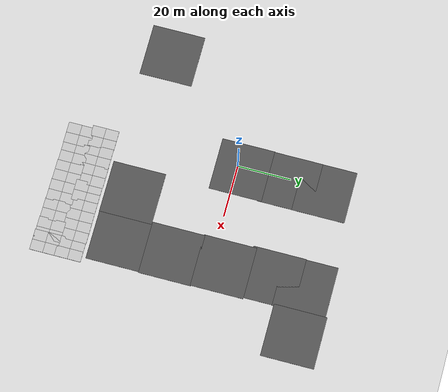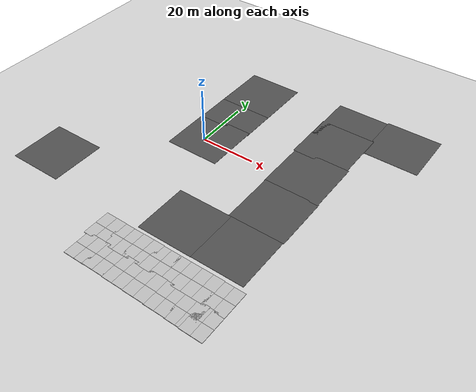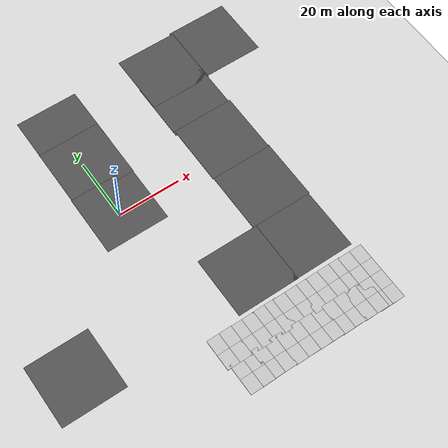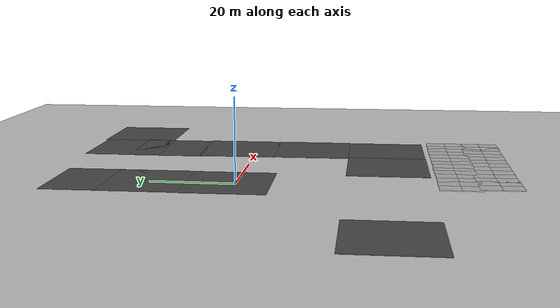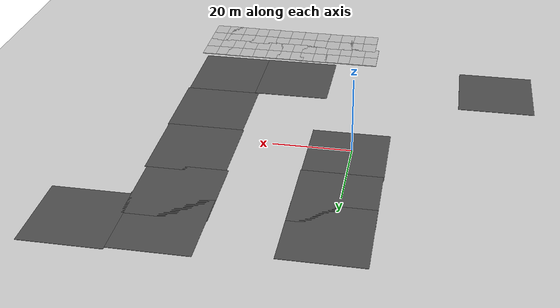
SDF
<sdf version="1.7">
 <world name="default">
  <model name="ground_plane">
   <static>1</static>
   <link name="link">
    <collision name="collision">
     <geometry><plane><normal>0 0 1</normal><size>100 100</size></plane></geometry>
     <surface><friction><ode><mu>100</mu><mu2>50</mu2></ode></friction></surface>
    </collision>
    <visual name="visual">
     <cast_shadows>0</cast_shadows>
     <geometry><plane><normal>0 0 1</normal><size>100 100</size></plane></geometry>
     <material>
      <script><uri>file://media/materials/scripts/gazebo.material</uri><name>Gazebo/Grey</name></script>
     </material>
    </visual>
   </link>
  </model>
  <model name="asphalt_plane">
   <static>1</static>
   <link name="link">
    <collision name="collision"><geometry><box><size>20 20 0.1</size></box></geometry></collision>
    <visual name="visual">
     <cast_shadows>0</cast_shadows>
     <geometry><box><size>20 20 0.1</size></box></geometry>
     <material>
      <script>
       <uri>model://asphalt_plane/materials/scripts</uri>
       <uri>model://asphalt_plane/materials/textures</uri>
       <name>vrc/asphalt</name>
      </script>
     </material>
    </visual>
   </link>
   <pose>-35.8594 -34.783 0 0 -0 0</pose>
  </model>
  <model name="asphalt_plane_1_clone_3">
   <static>1</static>
   <link name="link">
    <collision name="collision"><geometry><box><size>20 20 0.1</size></box></geometry></collision>
    <visual name="visual">
     <cast_shadows>0</cast_shadows>
     <geometry><box><size>20 20 0.1</size></box></geometry>
     <material>
      <script>
       <uri>model://asphalt_plane/materials/scripts</uri>
       <uri>model://asphalt_plane/materials/textures</uri>
       <name>vrc/asphalt</name>
      </script>
     </material>
    </visual>
   </link>
   <pose>1.16306 33.2821 0 0 -0 0</pose>
  </model>
  <model name="asphalt_plane_1_clone_4">
   <static>1</static>
   <link name="link">
    <collision name="collision"><geometry><box><size>20 20 0.1</size></box></geometry></collision>
    <visual name="visual">
     <cast_shadows>0</cast_shadows>
     <geometry><box><size>20 20 0.1</size></box></geometry>
     <material>
      <script>
       <uri>model://asphalt_plane/materials/scripts</uri>
       <uri>model://asphalt_plane/materials/textures</uri>
       <name>vrc/asphalt</name>
      </script>
     </material>
    </visual>
   </link>
   <pose>1.12304 20.2153 0 0 -0 0</pose>
  </model>
  <model name="asphalt_plane_1_clone_5">
   <static>1</static>
   <link name="link">
    <collision name="collision"><geometry><box><size>20 20 0.1</size></box></geometry></collision>
    <visual name="visual">
     <cast_shadows>0</cast_shadows>
     <geometry><box><size>20 20 0.1</size></box></geometry>
     <material>
      <script>
       <uri>model://asphalt_plane/materials/scripts</uri>
       <uri>model://asphalt_plane/materials/textures</uri>
       <name>vrc/asphalt</name>
      </script>
     </material>
    </visual>
   </link>
   <pose>0.961719 1.80257 0 0 -0 0</pose>
  </model>
  <model name="asphalt_plane_1_clone_8">
   <static>1</static>
   <link name="link">
    <collision name="collision"><geometry><box><size>20 20 0.1</size></box></geometry></collision>
    <visual name="visual">
     <cast_shadows>0</cast_shadows>
     <geometry><box><size>20 20 0.1</size></box></geometry>
     <material>
      <script>
       <uri>model://asphalt_plane/materials/scripts</uri>
       <uri>model://asphalt_plane/materials/textures</uri>
       <name>vrc/asphalt</name>
      </script>
     </material>
    </visual>
   </link>
   <pose>19.9413 -34.81 0 0 -0 0</pose>
  </model>
  <model name="asphalt_plane_1_clone_9">
   <static>1</static>
   <link name="link">
    <collision name="collision"><geometry><box><size>20 20 0.1</size></box></geometry></collision>
    <visual name="visual">
     <cast_shadows>0</cast_shadows>
     <geometry><box><size>20 20 0.1</size></box></geometry>
     <material>
      <script>
       <uri>model://asphalt_plane/materials/scripts</uri>
       <uri>model://asphalt_plane/materials/textures</uri>
       <name>vrc/asphalt</name>
      </script>
     </material>
    </visual>
   </link>
   <pose>38.6128 -34.7162 0 0 -0 0</pose>
  </model>
  <model name="asphalt_plane_1_clone_10">
   <static>1</static>
   <link name="link">
    <collision name="collision"><geometry><box><size>20 20 0.1</size></box></geometry></collision>
    <visual name="visual">
     <cast_shadows>0</cast_shadows>
     <geometry><box><size>20 20 0.1</size></box></geometry>
     <material>
      <script>
       <uri>model://asphalt_plane/materials/scripts</uri>
       <uri>model://asphalt_plane/materials/textures</uri>
       <name>vrc/asphalt</name>
      </script>
     </material>
    </visual>
   </link>
   <pose>38.9072 -14.7741 0 0 -0 0</pose>
  </model>
  <model name="asphalt_plane_1_clone_11">
   <static>1</static>
   <link name="link">
    <collision name="collision"><geometry><box><size>20 20 0.1</size></box></geometry></collision>
    <visual name="visual">
     <cast_shadows>0</cast_shadows>
     <geometry><box><size>20 20 0.1</size></box></geometry>
     <material>
      <script>
       <uri>model://asphalt_plane/materials/scripts</uri>
       <uri>model://asphalt_plane/materials/textures</uri>
       <name>vrc/asphalt</name>
      </script>
     </material>
    </visual>
   </link>
   <pose>38.6721 4.79781 0 0 -0 0</pose>
  </model>
  <model name="asphalt_plane_1_clone_12">
   <static>1</static>
   <link name="link">
    <collision name="collision"><geometry><box><size>20 20 0.1</size></box></geometry></collision>
    <visual name="visual">
     <cast_shadows>0</cast_shadows>
     <geometry><box><size>20 20 0.1</size></box></geometry>
     <material>
      <script>
       <uri>model://asphalt_plane/materials/scripts</uri>
       <uri>model://asphalt_plane/materials/textures</uri>
       <name>vrc/asphalt</name>
      </script>
     </material>
    </visual>
   </link>
   <pose>38.1463 23.3539 0 0 -0 0</pose>
  </model>
  <model name="asphalt_plane_1_clone_13">
   <static>1</static>
   <link name="link">
    <collision name="collision"><geometry><box><size>20 20 0.1</size></box></geometry></collision>
    <visual name="visual">
     <cast_shadows>0</cast_shadows>
     <geometry><box><size>20 20 0.1</size></box></geometry>
     <material>
      <script>
       <uri>model://asphalt_plane/materials/scripts</uri>
       <uri>model://asphalt_plane/materials/textures</uri>
       <name>vrc/asphalt</name>
      </script>
     </material>
    </visual>
   </link>
   <pose>38.3197 35.4499 0 0 -0 0</pose>
  </model>
  <model name="asphalt_plane_1_clone_14">
   <static>1</static>
   <link name="link">
    <collision name="collision"><geometry><box><size>20 20 0.1</size></box></geometry></collision>
    <visual name="visual">
     <cast_shadows>0</cast_shadows>
     <geometry><box><size>20 20 0.1</size></box></geometry>
     <material>
      <script>
       <uri>model://asphalt_plane/materials/scripts</uri>
       <uri>model://asphalt_plane/materials/textures</uri>
       <name>vrc/asphalt</name>
      </script>
     </material>
    </visual>
   </link>
   <pose>57.4898 36.0845 0 0 -0 0</pose>
  </model>
  <model name="mud_box_clone_1">
   <static>1</static>
   <link name="link">
    <collision name="collision"><geometry><box><size>8 10 0.2</size></box></geometry></collision>
    <visual name="visual_1">
     <pose>-2 2.5 0 0 -0 0</pose>
     <cast_shadows>0</cast_shadows>
     <geometry><box><size>4 5 0.2</size></box></geometry>
     <material>
      <script>
       <uri>model://mud_box/materials/scripts</uri>
       <uri>model://mud_box/materials/textures</uri>
       <name>vrc/mud</name>
      </script>
     </material>
    </visual>
    <visual name="visual_2">
     <pose>2 2.5 0 0 -0 0</pose>
     <cast_shadows>0</cast_shadows>
     <geometry><box><size>4 5 0.2</size></box></geometry>
     <material>
      <script>
       <uri>model://mud_box/materials/scripts</uri>
       <uri>model://mud_box/materials/textures</uri>
       <name>vrc/mud</name>
      </script>
     </material>
    </visual>
    <visual name="visual_3">
     <pose>2 -2.5 0 0 -0 0</pose>
     <cast_shadows>0</cast_shadows>
     <geometry><box><size>4 5 0.2</size></box></geometry>
     <material>
      <script>
       <uri>model://mud_box/materials/scripts</uri>
       <uri>model://mud_box/materials/textures</uri>
       <name>vrc/mud</name>
      </script>
     </material>
    </visual>
    <visual name="visual_4">
     <pose>-2 -2.5 0 0 -0 0</pose>
     <cast_shadows>0</cast_shadows>
     <geometry><box><size>4 5 0.2</size></box></geometry>
     <material>
      <script>
       <uri>model://mud_box/materials/scripts</uri>
       <uri>model://mud_box/materials/textures</uri>
       <name>vrc/mud</name>
      </script>
     </material>
    </visual>
   </link>
   <pose>2.39543 -50.9099 0 0 -0 0</pose>
  </model>
  <model name="mud_box_clone_2">
   <static>1</static>
   <link name="link">
    <collision name="collision"><geometry><box><size>8 10 0.2</size></box></geometry></collision>
    <visual name="visual_1">
     <pose>-2 2.5 0 0 -0 0</pose>
     <cast_shadows>0</cast_shadows>
     <geometry><box><size>4 5 0.2</size></box></geometry>
     <material>
      <script>
       <uri>model://mud_box/materials/scripts</uri>
       <uri>model://mud_box/materials/textures</uri>
       <name>vrc/mud</name>
      </script>
     </material>
    </visual>
    <visual name="visual_2">
     <pose>2 2.5 0 0 -0 0</pose>
     <cast_shadows>0</cast_shadows>
     <geometry><box><size>4 5 0.2</size></box></geometry>
     <material>
      <script>
       <uri>model://mud_box/materials/scripts</uri>
       <uri>model://mud_box/materials/textures</uri>
       <name>vrc/mud</name>
      </script>
     </material>
    </visual>
    <visual name="visual_3">
     <pose>2 -2.5 0 0 -0 0</pose>
     <cast_shadows>0</cast_shadows>
     <geometry><box><size>4 5 0.2</size></box></geometry>
     <material>
      <script>
       <uri>model://mud_box/materials/scripts</uri>
       <uri>model://mud_box/materials/textures</uri>
       <name>vrc/mud</name>
      </script>
     </material>
    </visual>
    <visual name="visual_4">
     <pose>-2 -2.5 0 0 -0 0</pose>
     <cast_shadows>0</cast_shadows>
     <geometry><box><size>4 5 0.2</size></box></geometry>
     <material>
      <script>
       <uri>model://mud_box/materials/scripts</uri>
       <uri>model://mud_box/materials/textures</uri>
       <name>vrc/mud</name>
      </script>
     </material>
    </visual>
   </link>
   <pose>9.78595 -50.9986 0 0 -0 0</pose>
  </model>
  <model name="mud_box_clone_3">
   <static>1</static>
   <link name="link">
    <collision name="collision"><geometry><box><size>8 10 0.2</size></box></geometry></collision>
    <visual name="visual_1">
     <pose>-2 2.5 0 0 -0 0</pose>
     <cast_shadows>0</cast_shadows>
     <geometry><box><size>4 5 0.2</size></box></geometry>
     <material>
      <script>
       <uri>model://mud_box/materials/scripts</uri>
       <uri>model://mud_box/materials/textures</uri>
       <name>vrc/mud</name>
      </script>
     </material>
    </visual>
    <visual name="visual_2">
     <pose>2 2.5 0 0 -0 0</pose>
     <cast_shadows>0</cast_shadows>
     <geometry><box><size>4 5 0.2</size></box></geometry>
     <material>
      <script>
       <uri>model://mud_box/materials/scripts</uri>
       <uri>model://mud_box/materials/textures</uri>
       <name>vrc/mud</name>
      </script>
     </material>
    </visual>
    <visual name="visual_3">
     <pose>2 -2.5 0 0 -0 0</pose>
     <cast_shadows>0</cast_shadows>
     <geometry><box><size>4 5 0.2</size></box></geometry>
     <material>
      <script>
       <uri>model://mud_box/materials/scripts</uri>
       <uri>model://mud_box/materials/textures</uri>
       <name>vrc/mud</name>
      </script>
     </material>
    </visual>
    <visual name="visual_4">
     <pose>-2 -2.5 0 0 -0 0</pose>
     <cast_shadows>0</cast_shadows>
     <geometry><box><size>4 5 0.2</size></box></geometry>
     <material>
      <script>
       <uri>model://mud_box/materials/scripts</uri>
       <uri>model://mud_box/materials/textures</uri>
       <name>vrc/mud</name>
      </script>
     </material>
    </visual>
   </link>
   <pose>17.3595 -50.9319 0 0 -0 0</pose>
  </model>
  <model name="mud_box_clone_4">
   <static>1</static>
   <link name="link">
    <collision name="collision"><geometry><box><size>8 10 0.2</size></box></geometry></collision>
    <visual name="visual_1">
     <pose>-2 2.5 0 0 -0 0</pose>
     <cast_shadows>0</cast_shadows>
     <geometry><box><size>4 5 0.2</size></box></geometry>
     <material>
      <script>
       <uri>model://mud_box/materials/scripts</uri>
       <uri>model://mud_box/materials/textures</uri>
       <name>vrc/mud</name>
      </script>
     </material>
    </visual>
    <visual name="visual_2">
     <pose>2 2.5 0 0 -0 0</pose>
     <cast_shadows>0</cast_shadows>
     <geometry><box><size>4 5 0.2</size></box></geometry>
     <material>
      <script>
       <uri>model://mud_box/materials/scripts</uri>
       <uri>model://mud_box/materials/textures</uri>
       <name>vrc/mud</name>
      </script>
     </material>
    </visual>
    <visual name="visual_3">
     <pose>2 -2.5 0 0 -0 0</pose>
     <cast_shadows>0</cast_shadows>
     <geometry><box><size>4 5 0.2</size></box></geometry>
     <material>
      <script>
       <uri>model://mud_box/materials/scripts</uri>
       <uri>model://mud_box/materials/textures</uri>
       <name>vrc/mud</name>
      </script>
     </material>
    </visual>
    <visual name="visual_4">
     <pose>-2 -2.5 0 0 -0 0</pose>
     <cast_shadows>0</cast_shadows>
     <geometry><box><size>4 5 0.2</size></box></geometry>
     <material>
      <script>
       <uri>model://mud_box/materials/scripts</uri>
       <uri>model://mud_box/materials/textures</uri>
       <name>vrc/mud</name>
      </script>
     </material>
    </visual>
   </link>
   <pose>24.2144 -51.0695 0 0 -0 0</pose>
  </model>
  <model name="mud_box_clone_5">
   <static>1</static>
   <link name="link">
    <collision name="collision"><geometry><box><size>8 10 0.2</size></box></geometry></collision>
    <visual name="visual_1">
     <pose>-2 2.5 0 0 -0 0</pose>
     <cast_shadows>0</cast_shadows>
     <geometry><box><size>4 5 0.2</size></box></geometry>
     <material>
      <script>
       <uri>model://mud_box/materials/scripts</uri>
       <uri>model://mud_box/materials/textures</uri>
       <name>vrc/mud</name>
      </script>
     </material>
    </visual>
    <visual name="visual_2">
     <pose>2 2.5 0 0 -0 0</pose>
     <cast_shadows>0</cast_shadows>
     <geometry><box><size>4 5 0.2</size></box></geometry>
     <material>
      <script>
       <uri>model://mud_box/materials/scripts</uri>
       <uri>model://mud_box/materials/textures</uri>
       <name>vrc/mud</name>
      </script>
     </material>
    </visual>
    <visual name="visual_3">
     <pose>2 -2.5 0 0 -0 0</pose>
     <cast_shadows>0</cast_shadows>
     <geometry><box><size>4 5 0.2</size></box></geometry>
     <material>
      <script>
       <uri>model://mud_box/materials/scripts</uri>
       <uri>model://mud_box/materials/textures</uri>
       <name>vrc/mud</name>
      </script>
     </material>
    </visual>
    <visual name="visual_4">
     <pose>-2 -2.5 0 0 -0 0</pose>
     <cast_shadows>0</cast_shadows>
     <geometry><box><size>4 5 0.2</size></box></geometry>
     <material>
      <script>
       <uri>model://mud_box/materials/scripts</uri>
       <uri>model://mud_box/materials/textures</uri>
       <name>vrc/mud</name>
      </script>
     </material>
    </visual>
   </link>
   <pose>31.5048 -51.0673 0 0 -0 0</pose>
  </model>
  <model name="mud_box_clone_6">
   <static>1</static>
   <link name="link">
    <collision name="collision"><geometry><box><size>8 10 0.2</size></box></geometry></collision>
    <visual name="visual_1">
     <pose>-2 2.5 0 0 -0 0</pose>
     <cast_shadows>0</cast_shadows>
     <geometry><box><size>4 5 0.2</size></box></geometry>
     <material>
      <script>
       <uri>model://mud_box/materials/scripts</uri>
       <uri>model://mud_box/materials/textures</uri>
       <name>vrc/mud</name>
      </script>
     </material>
    </visual>
    <visual name="visual_2">
     <pose>2 2.5 0 0 -0 0</pose>
     <cast_shadows>0</cast_shadows>
     <geometry><box><size>4 5 0.2</size></box></geometry>
     <material>
      <script>
       <uri>model://mud_box/materials/scripts</uri>
       <uri>model://mud_box/materials/textures</uri>
       <name>vrc/mud</name>
      </script>
     </material>
    </visual>
    <visual name="visual_3">
     <pose>2 -2.5 0 0 -0 0</pose>
     <cast_shadows>0</cast_shadows>
     <geometry><box><size>4 5 0.2</size></box></geometry>
     <material>
      <script>
       <uri>model://mud_box/materials/scripts</uri>
       <uri>model://mud_box/materials/textures</uri>
       <name>vrc/mud</name>
      </script>
     </material>
    </visual>
    <visual name="visual_4">
     <pose>-2 -2.5 0 0 -0 0</pose>
     <cast_shadows>0</cast_shadows>
     <geometry><box><size>4 5 0.2</size></box></geometry>
     <material>
      <script>
       <uri>model://mud_box/materials/scripts</uri>
       <uri>model://mud_box/materials/textures</uri>
       <name>vrc/mud</name>
      </script>
     </material>
    </visual>
   </link>
   <pose>39.4083 -51.0318 0 0 -0 0</pose>
  </model>
  <model name="mud_box_clone_7">
   <static>1</static>
   <link name="link">
    <collision name="collision"><geometry><box><size>8 10 0.2</size></box></geometry></collision>
    <visual name="visual_1">
     <pose>-2 2.5 0 0 -0 0</pose>
     <cast_shadows>0</cast_shadows>
     <geometry><box><size>4 5 0.2</size></box></geometry>
     <material>
      <script>
       <uri>model://mud_box/materials/scripts</uri>
       <uri>model://mud_box/materials/textures</uri>
       <name>vrc/mud</name>
      </script>
     </material>
    </visual>
    <visual name="visual_2">
     <pose>2 2.5 0 0 -0 0</pose>
     <cast_shadows>0</cast_shadows>
     <geometry><box><size>4 5 0.2</size></box></geometry>
     <material>
      <script>
       <uri>model://mud_box/materials/scripts</uri>
       <uri>model://mud_box/materials/textures</uri>
       <name>vrc/mud</name>
      </script>
     </material>
    </visual>
    <visual name="visual_3">
     <pose>2 -2.5 0 0 -0 0</pose>
     <cast_shadows>0</cast_shadows>
     <geometry><box><size>4 5 0.2</size></box></geometry>
     <material>
      <script>
       <uri>model://mud_box/materials/scripts</uri>
       <uri>model://mud_box/materials/textures</uri>
       <name>vrc/mud</name>
      </script>
     </material>
    </visual>
    <visual name="visual_4">
     <pose>-2 -2.5 0 0 -0 0</pose>
     <cast_shadows>0</cast_shadows>
     <geometry><box><size>4 5 0.2</size></box></geometry>
     <material>
      <script>
       <uri>model://mud_box/materials/scripts</uri>
       <uri>model://mud_box/materials/textures</uri>
       <name>vrc/mud</name>
      </script>
     </material>
    </visual>
   </link>
   <pose>46.6349 -51.1655 0 0 -0 0</pose>
  </model>
  <model name="mud_box_clone_11">
   <static>1</static>
   <link name="link">
    <collision name="collision"><geometry><box><size>8 10 0.2</size></box></geometry></collision>
    <visual name="visual_1">
     <pose>-2 2.5 0 0 -0 0</pose>
     <cast_shadows>0</cast_shadows>
     <geometry><box><size>4 5 0.2</size></box></geometry>
     <material>
      <script>
       <uri>model://mud_box/materials/scripts</uri>
       <uri>model://mud_box/materials/textures</uri>
       <name>vrc/mud</name>
      </script>
     </material>
    </visual>
    <visual name="visual_2">
     <pose>2 2.5 0 0 -0 0</pose>
     <cast_shadows>0</cast_shadows>
     <geometry><box><size>4 5 0.2</size></box></geometry>
     <material>
      <script>
       <uri>model://mud_box/materials/scripts</uri>
       <uri>model://mud_box/materials/textures</uri>
       <name>vrc/mud</name>
      </script>
     </material>
    </visual>
    <visual name="visual_3">
     <pose>2 -2.5 0 0 -0 0</pose>
     <cast_shadows>0</cast_shadows>
     <geometry><box><size>4 5 0.2</size></box></geometry>
     <material>
      <script>
       <uri>model://mud_box/materials/scripts</uri>
       <uri>model://mud_box/materials/textures</uri>
       <name>vrc/mud</name>
      </script>
     </material>
    </visual>
    <visual name="visual_4">
     <pose>-2 -2.5 0 0 -0 0</pose>
     <cast_shadows>0</cast_shadows>
     <geometry><box><size>4 5 0.2</size></box></geometry>
     <material>
      <script>
       <uri>model://mud_box/materials/scripts</uri>
       <uri>model://mud_box/materials/textures</uri>
       <name>vrc/mud</name>
      </script>
     </material>
    </visual>
   </link>
   <pose>3.48847 -59.9243 0 0 -0 0</pose>
  </model>
  <model name="mud_box_clone_12">
   <static>1</static>
   <link name="link">
    <collision name="collision"><geometry><box><size>8 10 0.2</size></box></geometry></collision>
    <visual name="visual_1">
     <pose>-2 2.5 0 0 -0 0</pose>
     <cast_shadows>0</cast_shadows>
     <geometry><box><size>4 5 0.2</size></box></geometry>
     <material>
      <script>
       <uri>model://mud_box/materials/scripts</uri>
       <uri>model://mud_box/materials/textures</uri>
       <name>vrc/mud</name>
      </script>
     </material>
    </visual>
    <visual name="visual_2">
     <pose>2 2.5 0 0 -0 0</pose>
     <cast_shadows>0</cast_shadows>
     <geometry><box><size>4 5 0.2</size></box></geometry>
     <material>
      <script>
       <uri>model://mud_box/materials/scripts</uri>
       <uri>model://mud_box/materials/textures</uri>
       <name>vrc/mud</name>
      </script>
     </material>
    </visual>
    <visual name="visual_3">
     <pose>2 -2.5 0 0 -0 0</pose>
     <cast_shadows>0</cast_shadows>
     <geometry><box><size>4 5 0.2</size></box></geometry>
     <material>
      <script>
       <uri>model://mud_box/materials/scripts</uri>
       <uri>model://mud_box/materials/textures</uri>
       <name>vrc/mud</name>
      </script>
     </material>
    </visual>
    <visual name="visual_4">
     <pose>-2 -2.5 0 0 -0 0</pose>
     <cast_shadows>0</cast_shadows>
     <geometry><box><size>4 5 0.2</size></box></geometry>
     <material>
      <script>
       <uri>model://mud_box/materials/scripts</uri>
       <uri>model://mud_box/materials/textures</uri>
       <name>vrc/mud</name>
      </script>
     </material>
    </visual>
   </link>
   <pose>10.6489 -59.847 0 0 -0 0</pose>
  </model>
  <model name="mud_box_clone_13">
   <static>1</static>
   <link name="link">
    <collision name="collision"><geometry><box><size>8 10 0.2</size></box></geometry></collision>
    <visual name="visual_1">
     <pose>-2 2.5 0 0 -0 0</pose>
     <cast_shadows>0</cast_shadows>
     <geometry><box><size>4 5 0.2</size></box></geometry>
     <material>
      <script>
       <uri>model://mud_box/materials/scripts</uri>
       <uri>model://mud_box/materials/textures</uri>
       <name>vrc/mud</name>
      </script>
     </material>
    </visual>
    <visual name="visual_2">
     <pose>2 2.5 0 0 -0 0</pose>
     <cast_shadows>0</cast_shadows>
     <geometry><box><size>4 5 0.2</size></box></geometry>
     <material>
      <script>
       <uri>model://mud_box/materials/scripts</uri>
       <uri>model://mud_box/materials/textures</uri>
       <name>vrc/mud</name>
      </script>
     </material>
    </visual>
    <visual name="visual_3">
     <pose>2 -2.5 0 0 -0 0</pose>
     <cast_shadows>0</cast_shadows>
     <geometry><box><size>4 5 0.2</size></box></geometry>
     <material>
      <script>
       <uri>model://mud_box/materials/scripts</uri>
       <uri>model://mud_box/materials/textures</uri>
       <name>vrc/mud</name>
      </script>
     </material>
    </visual>
    <visual name="visual_4">
     <pose>-2 -2.5 0 0 -0 0</pose>
     <cast_shadows>0</cast_shadows>
     <geometry><box><size>4 5 0.2</size></box></geometry>
     <material>
      <script>
       <uri>model://mud_box/materials/scripts</uri>
       <uri>model://mud_box/materials/textures</uri>
       <name>vrc/mud</name>
      </script>
     </material>
    </visual>
   </link>
   <pose>18.3846 -59.993 0 0 -0 0</pose>
  </model>
  <model name="mud_box_clone_14">
   <static>1</static>
   <link name="link">
    <collision name="collision"><geometry><box><size>8 10 0.2</size></box></geometry></collision>
    <visual name="visual_1">
     <pose>-2 2.5 0 0 -0 0</pose>
     <cast_shadows>0</cast_shadows>
     <geometry><box><size>4 5 0.2</size></box></geometry>
     <material>
      <script>
       <uri>model://mud_box/materials/scripts</uri>
       <uri>model://mud_box/materials/textures</uri>
       <name>vrc/mud</name>
      </script>
     </material>
    </visual>
    <visual name="visual_2">
     <pose>2 2.5 0 0 -0 0</pose>
     <cast_shadows>0</cast_shadows>
     <geometry><box><size>4 5 0.2</size></box></geometry>
     <material>
      <script>
       <uri>model://mud_box/materials/scripts</uri>
       <uri>model://mud_box/materials/textures</uri>
       <name>vrc/mud</name>
      </script>
     </material>
    </visual>
    <visual name="visual_3">
     <pose>2 -2.5 0 0 -0 0</pose>
     <cast_shadows>0</cast_shadows>
     <geometry><box><size>4 5 0.2</size></box></geometry>
     <material>
      <script>
       <uri>model://mud_box/materials/scripts</uri>
       <uri>model://mud_box/materials/textures</uri>
       <name>vrc/mud</name>
      </script>
     </material>
    </visual>
    <visual name="visual_4">
     <pose>-2 -2.5 0 0 -0 0</pose>
     <cast_shadows>0</cast_shadows>
     <geometry><box><size>4 5 0.2</size></box></geometry>
     <material>
      <script>
       <uri>model://mud_box/materials/scripts</uri>
       <uri>model://mud_box/materials/textures</uri>
       <name>vrc/mud</name>
      </script>
     </material>
    </visual>
   </link>
   <pose>26.3854 -60.093 0 0 -0 0</pose>
  </model>
  <model name="mud_box_clone_15">
   <static>1</static>
   <link name="link">
    <collision name="collision"><geometry><box><size>8 10 0.2</size></box></geometry></collision>
    <visual name="visual_1">
     <pose>-2 2.5 0 0 -0 0</pose>
     <cast_shadows>0</cast_shadows>
     <geometry><box><size>4 5 0.2</size></box></geometry>
     <material>
      <script>
       <uri>model://mud_box/materials/scripts</uri>
       <uri>model://mud_box/materials/textures</uri>
       <name>vrc/mud</name>
      </script>
     </material>
    </visual>
    <visual name="visual_2">
     <pose>2 2.5 0 0 -0 0</pose>
     <cast_shadows>0</cast_shadows>
     <geometry><box><size>4 5 0.2</size></box></geometry>
     <material>
      <script>
       <uri>model://mud_box/materials/scripts</uri>
       <uri>model://mud_box/materials/textures</uri>
       <name>vrc/mud</name>
      </script>
     </material>
    </visual>
    <visual name="visual_3">
     <pose>2 -2.5 0 0 -0 0</pose>
     <cast_shadows>0</cast_shadows>
     <geometry><box><size>4 5 0.2</size></box></geometry>
     <material>
      <script>
       <uri>model://mud_box/materials/scripts</uri>
       <uri>model://mud_box/materials/textures</uri>
       <name>vrc/mud</name>
      </script>
     </material>
    </visual>
    <visual name="visual_4">
     <pose>-2 -2.5 0 0 -0 0</pose>
     <cast_shadows>0</cast_shadows>
     <geometry><box><size>4 5 0.2</size></box></geometry>
     <material>
      <script>
       <uri>model://mud_box/materials/scripts</uri>
       <uri>model://mud_box/materials/textures</uri>
       <name>vrc/mud</name>
      </script>
     </material>
    </visual>
   </link>
   <pose>33.9132 -60.2351 0 0 -0 0</pose>
  </model>
  <model name="mud_box_clone_16">
   <static>1</static>
   <link name="link">
    <collision name="collision"><geometry><box><size>8 10 0.2</size></box></geometry></collision>
    <visual name="visual_1">
     <pose>-2 2.5 0 0 -0 0</pose>
     <cast_shadows>0</cast_shadows>
     <geometry><box><size>4 5 0.2</size></box></geometry>
     <material>
      <script>
       <uri>model://mud_box/materials/scripts</uri>
       <uri>model://mud_box/materials/textures</uri>
       <name>vrc/mud</name>
      </script>
     </material>
    </visual>
    <visual name="visual_2">
     <pose>2 2.5 0 0 -0 0</pose>
     <cast_shadows>0</cast_shadows>
     <geometry><box><size>4 5 0.2</size></box></geometry>
     <material>
      <script>
       <uri>model://mud_box/materials/scripts</uri>
       <uri>model://mud_box/materials/textures</uri>
       <name>vrc/mud</name>
      </script>
     </material>
    </visual>
    <visual name="visual_3">
     <pose>2 -2.5 0 0 -0 0</pose>
     <cast_shadows>0</cast_shadows>
     <geometry><box><size>4 5 0.2</size></box></geometry>
     <material>
      <script>
       <uri>model://mud_box/materials/scripts</uri>
       <uri>model://mud_box/materials/textures</uri>
       <name>vrc/mud</name>
      </script>
     </material>
    </visual>
    <visual name="visual_4">
     <pose>-2 -2.5 0 0 -0 0</pose>
     <cast_shadows>0</cast_shadows>
     <geometry><box><size>4 5 0.2</size></box></geometry>
     <material>
      <script>
       <uri>model://mud_box/materials/scripts</uri>
       <uri>model://mud_box/materials/textures</uri>
       <name>vrc/mud</name>
      </script>
     </material>
    </visual>
   </link>
   <pose>41.4152 -60.3791 0 0 -0 0</pose>
  </model>
  <model name="mud_box_clone_17">
   <static>1</static>
   <link name="link">
    <collision name="collision"><geometry><box><size>8 10 0.2</size></box></geometry></collision>
    <visual name="visual_1">
     <pose>-2 2.5 0 0 -0 0</pose>
     <cast_shadows>0</cast_shadows>
     <geometry><box><size>4 5 0.2</size></box></geometry>
     <material>
      <script>
       <uri>model://mud_box/materials/scripts</uri>
       <uri>model://mud_box/materials/textures</uri>
       <name>vrc/mud</name>
      </script>
     </material>
    </visual>
    <visual name="visual_2">
     <pose>2 2.5 0 0 -0 0</pose>
     <cast_shadows>0</cast_shadows>
     <geometry><box><size>4 5 0.2</size></box></geometry>
     <material>
      <script>
       <uri>model://mud_box/materials/scripts</uri>
       <uri>model://mud_box/materials/textures</uri>
       <name>vrc/mud</name>
      </script>
     </material>
    </visual>
    <visual name="visual_3">
     <pose>2 -2.5 0 0 -0 0</pose>
     <cast_shadows>0</cast_shadows>
     <geometry><box><size>4 5 0.2</size></box></geometry>
     <material>
      <script>
       <uri>model://mud_box/materials/scripts</uri>
       <uri>model://mud_box/materials/textures</uri>
       <name>vrc/mud</name>
      </script>
     </material>
    </visual>
    <visual name="visual_4">
     <pose>-2 -2.5 0 0 -0 0</pose>
     <cast_shadows>0</cast_shadows>
     <geometry><box><size>4 5 0.2</size></box></geometry>
     <material>
      <script>
       <uri>model://mud_box/materials/scripts</uri>
       <uri>model://mud_box/materials/textures</uri>
       <name>vrc/mud</name>
      </script>
     </material>
    </visual>
   </link>
   <pose>46.6372 -60.5542 0 0 -0 0</pose>
  </model>
 </world>
</sdf>
